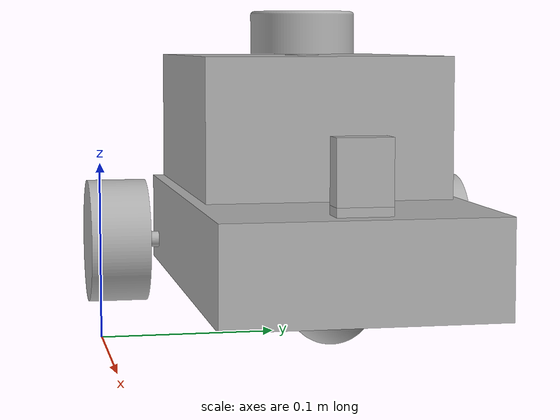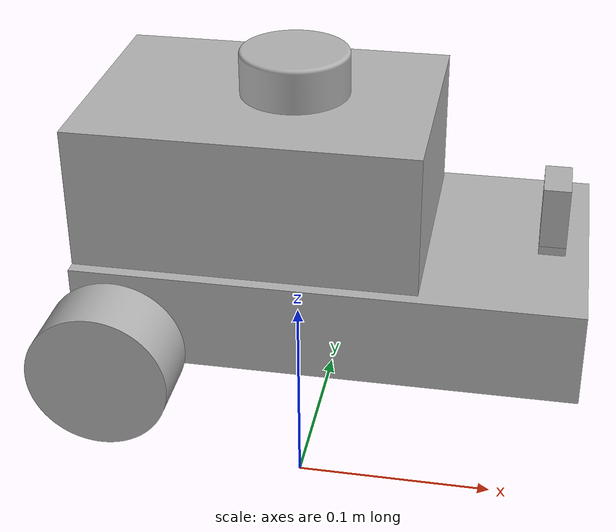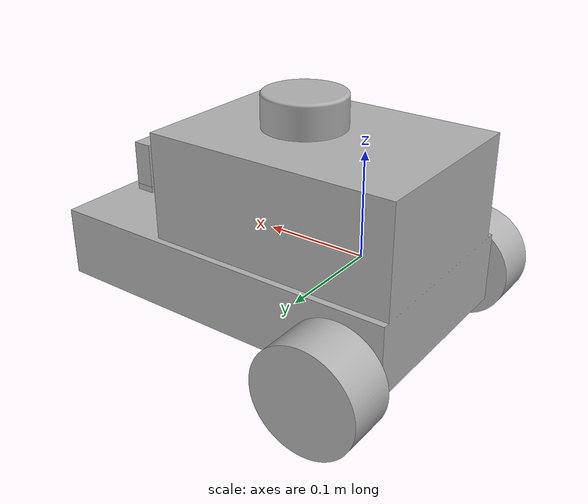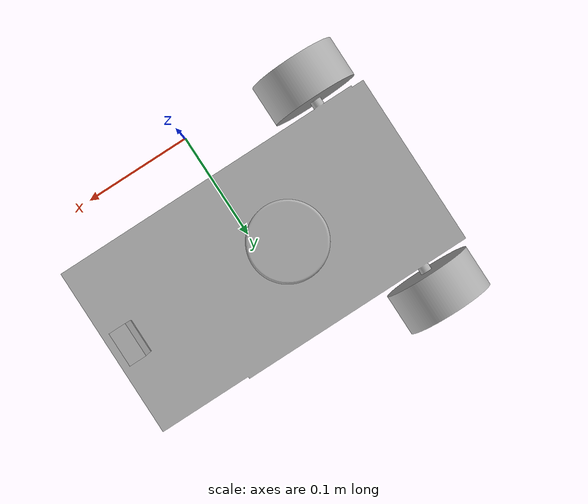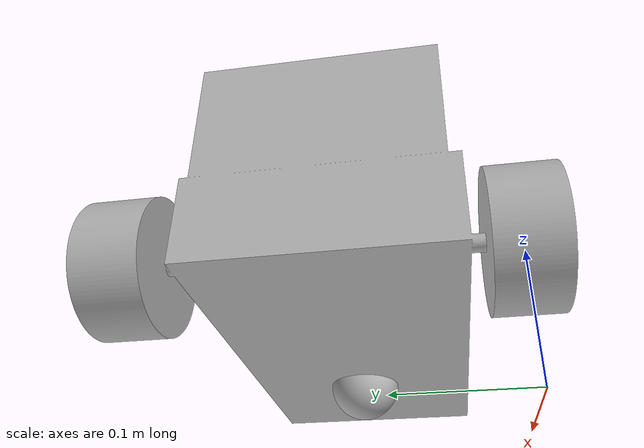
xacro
<?xml version="1.0" ?>
<robot name="ROS_rover_urdf" xmlns:xacro="http://www.ros.org/wiki/xacro">

<xacro:include filename="$(find ROS_rover_urdf_description)/urdf/materials.xacro" />
<xacro:include filename="$(find ROS_rover_urdf_description)/urdf/ROS_rover_urdf.trans" />
<xacro:include filename="$(find ROS_rover_urdf_description)/urdf/ROS_rover_urdf.gazebo" />
<link name="base_link">
  <inertial>
    <origin xyz="-1 0.12224166560310168 0.08643892236095495" rpy="0 0 0"/>
    <mass value="34.90606826800328"/>
    <inertia ixx="0.114886" iyy="0.239343" izz="0.249193" ixy="0.000401" iyz="-0.000589" ixz="0.025841"/>
  </inertial>
  <visual>
    <origin xyz="0 0 0" rpy="0 0 0"/>
    <geometry>
      <mesh filename="file://$(find ROS_rover_urdf_description)/meshes/base_link.stl" scale="0.001 0.001 0.001"/>
    </geometry>
    <material name="silver"/>
  </visual>
  <collision>
    <origin xyz="0 0 0" rpy="0 0 0"/>
    <geometry>
      <mesh filename="file://$(find ROS_rover_urdf_description)/meshes/base_link.stl" scale="0.001 0.001 0.001"/>
    </geometry>
  </collision>
</link>

<link name="Right_wheel_1">
  <inertial>
    <origin xyz="4.24215932839922e-07 -0.018500000000000003 8.09204523458118e-08" rpy="0 0 0"/>
    <mass value="1.3878753666636718"/>
    <inertia ixx="0.000686" iyy="0.001055" izz="0.000686" ixy="-0.0" iyz="0.0" ixz="-0.0"/>
  </inertial>
  <visual>
    <origin xyz="0.109883 -0.037 -0.041686" rpy="0 0 0"/>
    <geometry>
      <mesh filename="file://$(find ROS_rover_urdf_description)/meshes/Right_wheel_1.stl" scale="0.001 0.001 0.001"/>
    </geometry>
    <material name="silver"/>
  </visual>
  <collision>
    <origin xyz="0.109883 -0.037 -0.041686" rpy="0 0 0"/>
    <geometry>
      <mesh filename="file://$(find ROS_rover_urdf_description)/meshes/Right_wheel_1.stl" scale="0.001 0.001 0.001"/>
    </geometry>
  </collision>
</link>

<link name="Left_wheel_1">
  <inertial>
    <origin xyz="4.24215932839922e-07 0.01849999999999999 8.092045233193401e-08" rpy="0 0 0"/>
    <mass value="1.3878753666636712"/>
    <inertia ixx="0.000686" iyy="0.001055" izz="0.000686" ixy="0.0" iyz="0.0" ixz="-0.0"/>
  </inertial>
  <visual>
    <origin xyz="0.109883 -0.2086 -0.041686" rpy="0 0 0"/>
    <geometry>
      <mesh filename="file://$(find ROS_rover_urdf_description)/meshes/Left_wheel_1.stl" scale="0.001 0.001 0.001"/>
    </geometry>
    <material name="silver"/>
  </visual>
  <collision>
    <origin xyz="0.109883 -0.2086 -0.041686" rpy="0 0 0"/>
    <geometry>
      <mesh filename="file://$(find ROS_rover_urdf_description)/meshes/Left_wheel_1.stl" scale="0.001 0.001 0.001"/>
    </geometry>
  </collision>
</link>

<link name="_front_ball_1">
  <inertial>
    <origin xyz="2.7755575615628914e-17 -1.4670485243284404e-08 3.1211140116491065e-07" rpy="0 0 0"/>
    <mass value="0.4809809344697313"/>
    <inertia ixx="0.000115" iyy="0.000115" izz="0.000115" ixy="0.0" iyz="0.0" ixz="0.0"/>
  </inertial>
  <visual>
    <origin xyz="-0.05652 -0.121748 -0.027021" rpy="0 0 0"/>
    <geometry>
      <mesh filename="file://$(find ROS_rover_urdf_description)/meshes/_front_ball_1.stl" scale="0.001 0.001 0.001"/>
    </geometry>
    <material name="silver"/>
  </visual>
  <collision>
    <origin xyz="-0.05652 -0.121748 -0.027021" rpy="0 0 0"/>
    <geometry>
      <mesh filename="file://$(find ROS_rover_urdf_description)/meshes/_front_ball_1.stl" scale="0.001 0.001 0.001"/>
    </geometry>
  </collision>
</link>

<link name="Cam_1">
  <inertial>
    <origin xyz="-3.113798402731849e-07 -3.7773692553033644e-07 0.017615253664364186" rpy="0 0 0"/>
    <mass value="0.12444997499999998"/>
    <inertia ixx="2.2e-05" iyy="1.5e-05" izz="1.2e-05" ixy="0.0" iyz="0.0" ixz="0.0"/>
  </inertial>
  <visual>
    <origin xyz="-0.122495 -0.122725 -0.086129" rpy="0 0 0"/>
    <geometry>
      <mesh filename="file://$(find ROS_rover_urdf_description)/meshes/Cam_1.stl" scale="0.001 0.001 0.001"/>
    </geometry>
    <material name="silver"/>
  </visual>
  <collision>
    <origin xyz="-0.122495 -0.122725 -0.086129" rpy="0 0 0"/>
    <geometry>
      <mesh filename="file://$(find ROS_rover_urdf_description)/meshes/Cam_1.stl" scale="0.001 0.001 0.001"/>
    </geometry>
  </collision>
</link>

<link name="Lidar_1">
  <inertial>
    <origin xyz="8.458430520580373e-08 -2.3180009273149338e-07 0.012473784183963443" rpy="0 0 0"/>
    <mass value="0.5822410911588851"/>
    <inertia ixx="0.000168" iyy="0.000168" izz="0.000275" ixy="0.0" iyz="0.0" ixz="0.0"/>
  </inertial>
  <visual>
    <origin xyz="0.024813 -0.122765 -0.162152" rpy="0 0 0"/>
    <geometry>
      <mesh filename="file://$(find ROS_rover_urdf_description)/meshes/Lidar_1.stl" scale="0.001 0.001 0.001"/>
    </geometry>
    <material name="silver"/>
  </visual>
  <collision>
    <origin xyz="0.024813 -0.122765 -0.162152" rpy="0 0 0"/>
    <geometry>
      <mesh filename="file://$(find ROS_rover_urdf_description)/meshes/Lidar_1.stl" scale="0.001 0.001 0.001"/>
    </geometry>
  </collision>
</link>

<joint name="Revolute 24" type="continuous">
  <origin xyz="-0.109883 0.037 0.041686" rpy="0 0 0"/>
  <parent link="base_link"/>
  <child link="Right_wheel_1"/>
  <axis xyz="0.0 -1.0 0.0"/>
</joint>

<joint name="Revolute 25" type="continuous">
  <origin xyz="-0.109883 0.2086 0.041686" rpy="0 0 0"/>
  <parent link="base_link"/>
  <child link="Left_wheel_1"/>
  <axis xyz="0.0 1.0 0.0"/>
</joint>

<joint name="Revolute 26" type="continuous">
  <origin xyz="0.05652 0.121748 0.027021" rpy="0 0 0"/>
  <parent link="base_link"/>
  <child link="_front_ball_1"/>
  <axis xyz="0.0 0.0 -1.0"/>
</joint>

<joint name="Rigid 27" type="fixed">
  <origin xyz="0.122495 0.122725 0.086129" rpy="0 0 0"/>
  <parent link="base_link"/>
  <child link="Cam_1"/>
</joint>

<joint name="Rigid 28" type="fixed">
  <origin xyz="-0.024813 0.122765 0.162152" rpy="0 0 0"/>
  <parent link="base_link"/>
  <child link="Lidar_1"/>
</joint>

</robot>

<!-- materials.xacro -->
<robot name="ROS_rover_urdf" xmlns:xacro="http://www.ros.org/wiki/xacro" >

<material name="silver">
  <color rgba="0.700 0.700 0.700 1.000"/>
</material>

</robot>

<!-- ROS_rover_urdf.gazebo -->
<robot name="ROS_rover_urdf" xmlns:xacro="http://www.ros.org/wiki/xacro" >

<xacro:property name="body_color" value="Gazebo/Silver" />

<gazebo>
  <plugin name="control" filename="libgazebo_ros_control.so"/>
</gazebo>
<gazebo reference="base_link">
  <material>${body_color}</material>
  <mu1>0.2</mu1>
  <mu2>0.2</mu2>
  <self_collide>true</self_collide>
  <gravity>true</gravity>
</gazebo>

<gazebo reference="Right_wheel_1">
  <material>${body_color}</material>
  <mu1>0.2</mu1>
  <mu2>0.2</mu2>
  <self_collide>true</self_collide>
</gazebo>

<gazebo reference="Left_wheel_1">
  <material>${body_color}</material>
  <mu1>0.2</mu1>
  <mu2>0.2</mu2>
  <self_collide>true</self_collide>
</gazebo>

<gazebo reference="_front_ball_1">
  <material>${body_color}</material>
  <mu1>0.2</mu1>
  <mu2>0.2</mu2>
  <self_collide>true</self_collide>
</gazebo>

<gazebo reference="Cam_1">
  <material>${body_color}</material>
  <mu1>0.2</mu1>
  <mu2>0.2</mu2>
  <self_collide>true</self_collide>
</gazebo>

<gazebo reference="Lidar_1">
  <material>${body_color}</material>
  <mu1>0.2</mu1>
  <mu2>0.2</mu2>
  <self_collide>true</self_collide>
</gazebo>

</robot>
